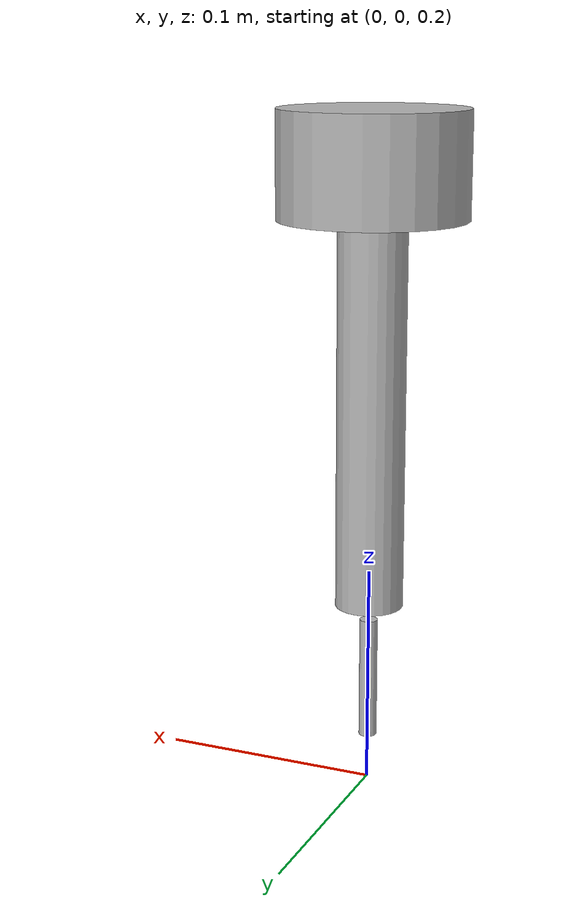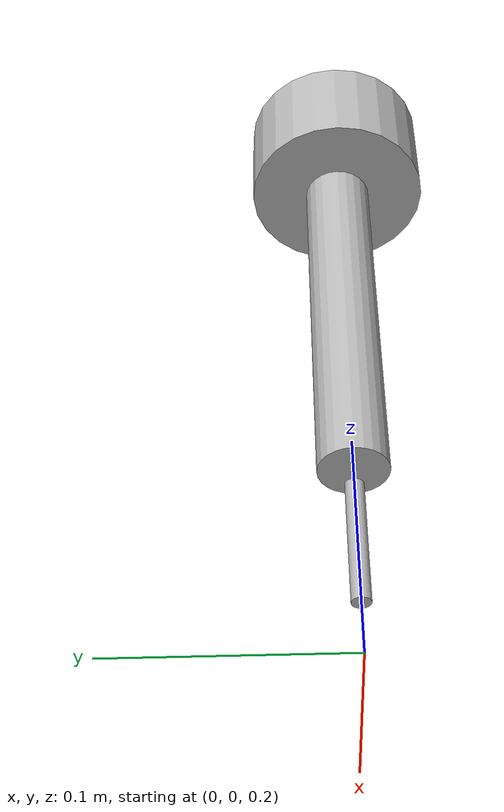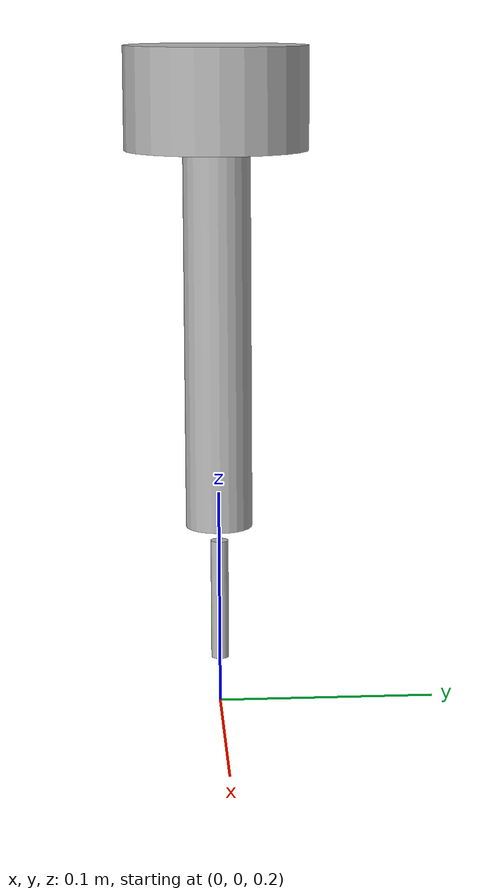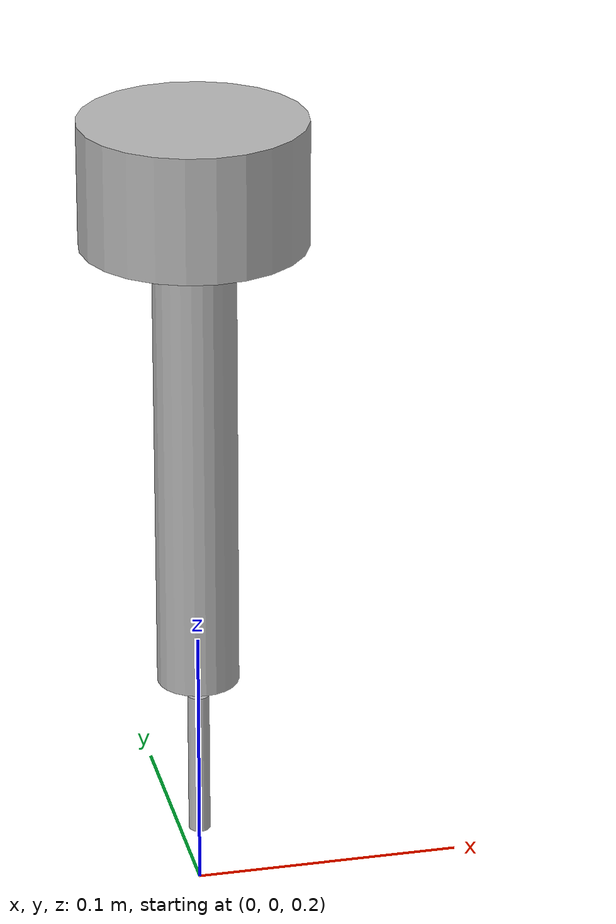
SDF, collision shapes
<?xml version="1.0" ?>
<sdf version="1.5">
  <model name="end_effector">
    <pose>0 0 0.5 0 0 0</pose>
    <link name="link">
      <collision name='collision0'>
        <pose>2.0000000000000002e-05 0 -0.01925 0 0 0</pose>
        <geometry>
          <cylinder>
            <radius>0.041500000000000002</radius>
            <length>0.0465</length>
          </cylinder>
        </geometry>
      </collision>
      <collision name='collision1'>
        <pose>0 -5.0000000000000002e-05 -0.129 0 0 0</pose>
        <geometry>
          <cylinder>
            <radius>0.01525</radius>
            <length>0.17299999999999999</length>
          </cylinder>
        </geometry>
      </collision>
      <collision name='collision2'>
        <pose>0 0 -0.2505 0 0 0</pose>
        <geometry>
          <cylinder>
            <radius>0.0040499999999999998</radius>
            <length>0.056000000000000001</length>
          </cylinder>
        </geometry>
      </collision>
      <visual name="visual">
        <geometry>
          <mesh>
            <uri>meshes/end_effector.glb</uri>
          </mesh>
        </geometry>
      </visual>
    </link>
  </model>
</sdf>
